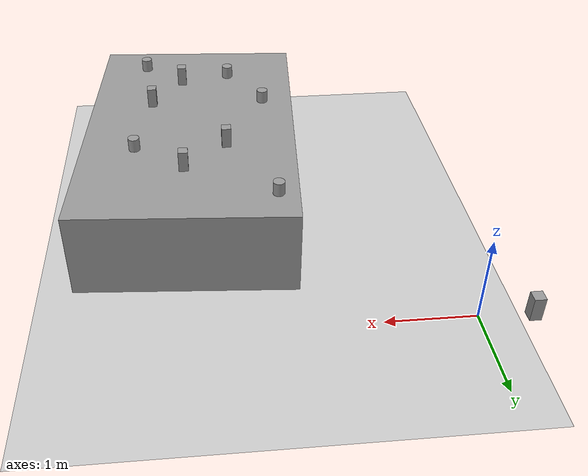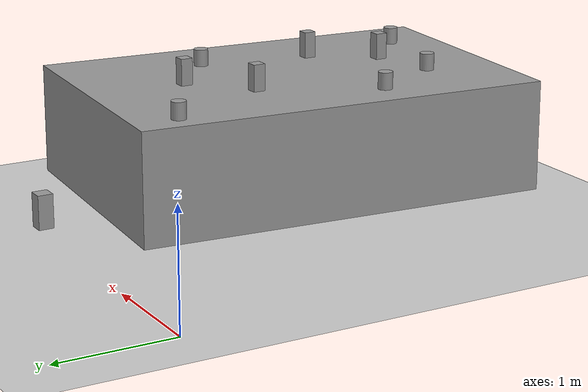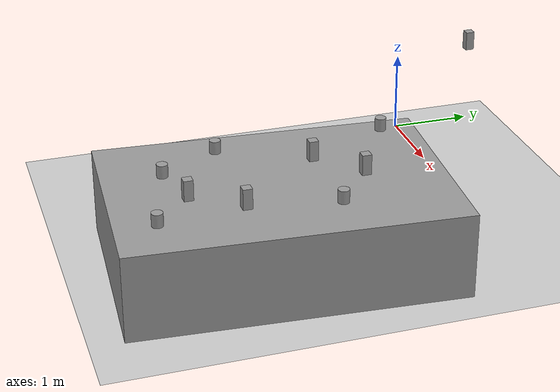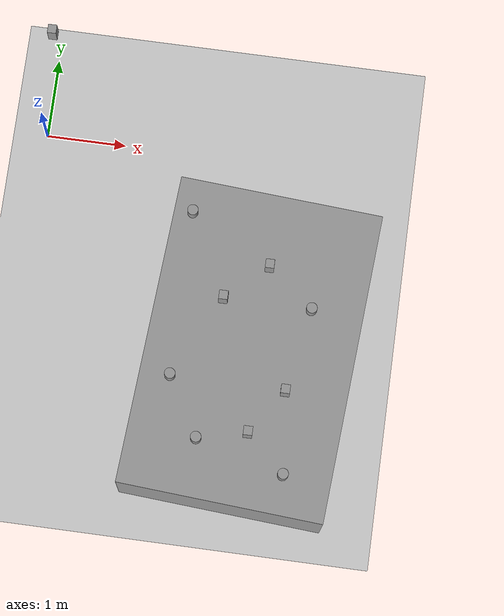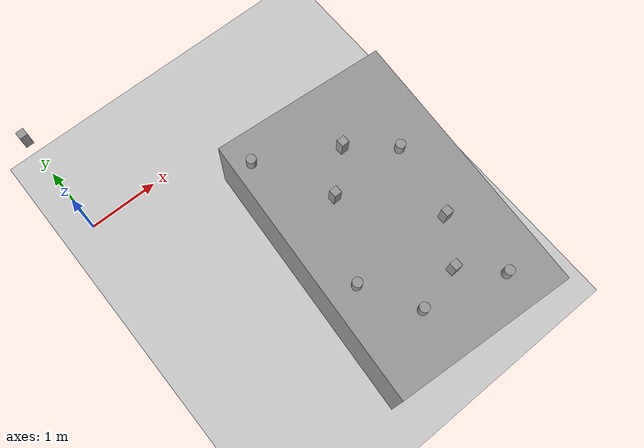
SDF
<sdf version="1.5">
 <world name="default">
  <light name="sun" type="directional">
   <pose>0 0 10 0 -0 0</pose>
   <diffuse>0.8 0.8 0.8 1</diffuse>
   <specular>0.2 0.2 0.2 1</specular>
   <attenuation>
    <range>1000</range>
    <constant>0.9</constant>
    <linear>0.01</linear>
    <quadratic>0.001</quadratic>
   </attenuation>
   <direction>-0.5 0.1 -0.9</direction>
  </light>
  <model name="ground_plane">
   <static>1</static>
   <link name="link">
    <collision name="collision">
     <geometry><plane><normal>0 0 1</normal><size>100 100</size></plane></geometry>
     <surface><friction><ode><mu>100</mu><mu2>50</mu2></ode></friction></surface>
    </collision>
    <visual name="visual">
     <cast_shadows>0</cast_shadows>
     <geometry><plane><normal>0 0 1</normal><size>100 100</size></plane></geometry>
     <material>
      <script><uri>file://media/materials/scripts/gazebo.material</uri><name>Gazebo/Grey</name></script>
     </material>
    </visual>
   </link>
  </model>
  <physics name="default_physics" default="0" type="ode">
   <max_step_size>0.001</max_step_size>
   <real_time_factor>1</real_time_factor>
   <real_time_update_rate>1000</real_time_update_rate>
   <gravity>0 0 -9.8</gravity>
   <magnetic_field>5.5645e-06 2.28758e-05 -4.23884e-05</magnetic_field>
  </physics>
  <scene><ambient>0.4 0.4 0.4 1</ambient><background>0.7 0.7 0.7 1</background><shadows>1</shadows></scene>
  <spherical_coordinates>
   <surface_model>EARTH_WGS84</surface_model>
   <latitude_deg>0</latitude_deg>
   <longitude_deg>0</longitude_deg>
   <elevation>0</elevation>
   <heading_deg>0</heading_deg>
  </spherical_coordinates>
  <model name="unit_box_1">
   <pose>2.9046 -2.53876 0.499985 -1.05879e-22 -1.1e-05 -0.069781</pose>
   <link name="unit_box_1::unit_box_1::link">
    <inertial>
     <mass>1</mass>
     <inertia><ixx>1</ixx><ixy>0</ixy><ixz>0</ixz><iyy>1</iyy><iyz>0</iyz><izz>1</izz></inertia>
    </inertial>
    <collision name="collision"><geometry><box><size>2.47344 3.7744 1</size></box></geometry></collision>
    <visual name="visual">
     <geometry><box><size>2.47344 3.7744 1</size></box></geometry>
     <material>
      <script><uri>file://media/materials/scripts/gazebo.material</uri><name>Gazebo/Grey</name></script>
     </material>
    </visual>
    <gravity>0</gravity>
   </link>
  </model>
  <model name="unit_cylinder_1">
   <pose>2.40382 -3.70475 1.07729 -0.002114 0.000664 0.005574</pose>
   <link name="link">
    <inertial>
     <mass>1</mass>
     <inertia><ixx>1</ixx><ixy>0</ixy><ixz>0</ixz><iyy>1</iyy><iyz>0</iyz><izz>1</izz></inertia>
    </inertial>
    <collision name="collision">
     <geometry><cylinder><radius>0.0648733</radius><length>0.154338</length></cylinder></geometry>
    </collision>
    <visual name="visual">
     <geometry><cylinder><radius>0.0648733</radius><length>0.154338</length></cylinder></geometry>
     <material>
      <script><uri>file://media/materials/scripts/gazebo.material</uri><name>Gazebo/Grey</name></script>
     </material>
    </visual>
   </link>
  </model>
  <model name="unit_box_2">
   <pose>3.37255 -3.01784 1.12091 -0.001977 -0.003064 0.006503</pose>
   <link name="link">
    <inertial>
     <mass>1</mass>
     <inertia><ixx>1</ixx><ixy>0</ixy><ixz>0</ixz><iyy>1</iyy><iyz>0</iyz><izz>1</izz></inertia>
    </inertial>
    <collision name="collision">
     <geometry><box><size>0.107041 0.107841 0.241307</size></box></geometry>
    </collision>
    <visual name="visual">
     <geometry><box><size>0.107041 0.107841 0.241307</size></box></geometry>
     <material>
      <script><uri>file://media/materials/scripts/gazebo.material</uri><name>Gazebo/Grey</name></script>
     </material>
    </visual>
   </link>
  </model>
  <model name="unit_cylinder_1_clone">
   <pose>2 -3 1.07725 -0.001717 0.000401 0.005615</pose>
   <link name="link">
    <inertial>
     <mass>1</mass>
     <inertia><ixx>1</ixx><ixy>0</ixy><ixz>0</ixz><iyy>1</iyy><iyz>0</iyz><izz>1</izz></inertia>
    </inertial>
    <collision name="collision">
     <geometry><cylinder><radius>0.0648733</radius><length>0.154338</length></cylinder></geometry>
    </collision>
    <visual name="visual">
     <geometry><cylinder><radius>0.0648733</radius><length>0.154338</length></cylinder></geometry>
     <material>
      <script><uri>file://media/materials/scripts/gazebo.material</uri><name>Gazebo/Grey</name></script>
     </material>
    </visual>
   </link>
  </model>
  <model name="unit_box_2_clone">
   <pose>0 1 1.12092 -0.002064 -0.003111 0.006458</pose>
   <link name="link">
    <inertial>
     <mass>1</mass>
     <inertia><ixx>1</ixx><ixy>0</ixy><ixz>0</ixz><iyy>1</iyy><iyz>0</iyz><izz>1</izz></inertia>
    </inertial>
    <collision name="collision">
     <geometry><box><size>0.107041 0.107841 0.241307</size></box></geometry>
    </collision>
    <visual name="visual">
     <geometry><box><size>0.107041 0.107841 0.241307</size></box></geometry>
     <material>
      <script><uri>file://media/materials/scripts/gazebo.material</uri><name>Gazebo/Grey</name></script>
     </material>
    </visual>
   </link>
  </model>
  <model name="unit_box_2_clone_0">
   <pose>2.50323 -2 1.12092 -0.002064 -0.003111 0.006458</pose>
   <link name="link">
    <inertial>
     <mass>1</mass>
     <inertia><ixx>1</ixx><ixy>0</ixy><ixz>0</ixz><iyy>1</iyy><iyz>0</iyz><izz>1</izz></inertia>
    </inertial>
    <collision name="collision">
     <geometry><box><size>0.107041 0.107841 0.241307</size></box></geometry>
    </collision>
    <visual name="visual">
     <geometry><box><size>0.107041 0.107841 0.241307</size></box></geometry>
     <material>
      <script><uri>file://media/materials/scripts/gazebo.material</uri><name>Gazebo/Grey</name></script>
     </material>
    </visual>
   </link>
  </model>
  <model name="unit_box_2_clone_1">
   <pose>3 -1.55149 1.12092 -0.002064 -0.003111 0.006458</pose>
   <link name="link">
    <inertial>
     <mass>1</mass>
     <inertia><ixx>1</ixx><ixy>0</ixy><ixz>0</ixz><iyy>1</iyy><iyz>0</iyz><izz>1</izz></inertia>
    </inertial>
    <collision name="collision">
     <geometry><box><size>0.107041 0.107841 0.241307</size></box></geometry>
    </collision>
    <visual name="visual">
     <geometry><box><size>0.107041 0.107841 0.241307</size></box></geometry>
     <material>
      <script><uri>file://media/materials/scripts/gazebo.material</uri><name>Gazebo/Grey</name></script>
     </material>
    </visual>
   </link>
  </model>
  <model name="unit_box_2_clone_2">
   <pose>3 -3.56388 1.12092 -0.002064 -0.003111 0.006458</pose>
   <link name="link">
    <inertial>
     <mass>1</mass>
     <inertia><ixx>1</ixx><ixy>0</ixy><ixz>0</ixz><iyy>1</iyy><iyz>0</iyz><izz>1</izz></inertia>
    </inertial>
    <collision name="collision">
     <geometry><box><size>0.107041 0.107841 0.241307</size></box></geometry>
    </collision>
    <visual name="visual">
     <geometry><box><size>0.107041 0.107841 0.241307</size></box></geometry>
     <material>
      <script><uri>file://media/materials/scripts/gazebo.material</uri><name>Gazebo/Grey</name></script>
     </material>
    </visual>
   </link>
  </model>
  <model name="unit_cylinder_1_clone_0">
   <pose>2 -1 1.07725 -0.001717 0.000401 0.005615</pose>
   <link name="link">
    <inertial>
     <mass>1</mass>
     <inertia><ixx>1</ixx><ixy>0</ixy><ixz>0</ixz><iyy>1</iyy><iyz>0</iyz><izz>1</izz></inertia>
    </inertial>
    <collision name="collision">
     <geometry><cylinder><radius>0.0648733</radius><length>0.154338</length></cylinder></geometry>
    </collision>
    <visual name="visual">
     <geometry><cylinder><radius>0.0648733</radius><length>0.154338</length></cylinder></geometry>
     <material>
      <script><uri>file://media/materials/scripts/gazebo.material</uri><name>Gazebo/Grey</name></script>
     </material>
    </visual>
   </link>
  </model>
  <model name="unit_cylinder_1_clone_1">
   <pose>3.46908 -4 1.07725 -0.001717 0.000401 0.005615</pose>
   <link name="link">
    <inertial>
     <mass>1</mass>
     <inertia><ixx>1</ixx><ixy>0</ixy><ixz>0</ixz><iyy>1</iyy><iyz>0</iyz><izz>1</izz></inertia>
    </inertial>
    <collision name="collision">
     <geometry><cylinder><radius>0.0648733</radius><length>0.154338</length></cylinder></geometry>
    </collision>
    <visual name="visual">
     <geometry><cylinder><radius>0.0648733</radius><length>0.154338</length></cylinder></geometry>
     <material>
      <script><uri>file://media/materials/scripts/gazebo.material</uri><name>Gazebo/Grey</name></script>
     </material>
    </visual>
   </link>
  </model>
  <model name="unit_cylinder_1_clone_2">
   <pose>3.55989 -2 1.07725 -0.001717 0.000401 0.005615</pose>
   <link name="link">
    <inertial>
     <mass>1</mass>
     <inertia><ixx>1</ixx><ixy>0</ixy><ixz>0</ixz><iyy>1</iyy><iyz>0</iyz><izz>1</izz></inertia>
    </inertial>
    <collision name="collision">
     <geometry><cylinder><radius>0.0648733</radius><length>0.154338</length></cylinder></geometry>
    </collision>
    <visual name="visual">
     <geometry><cylinder><radius>0.0648733</radius><length>0.154338</length></cylinder></geometry>
     <material>
      <script><uri>file://media/materials/scripts/gazebo.material</uri><name>Gazebo/Grey</name></script>
     </material>
    </visual>
   </link>
  </model>
 </world>
</sdf>
